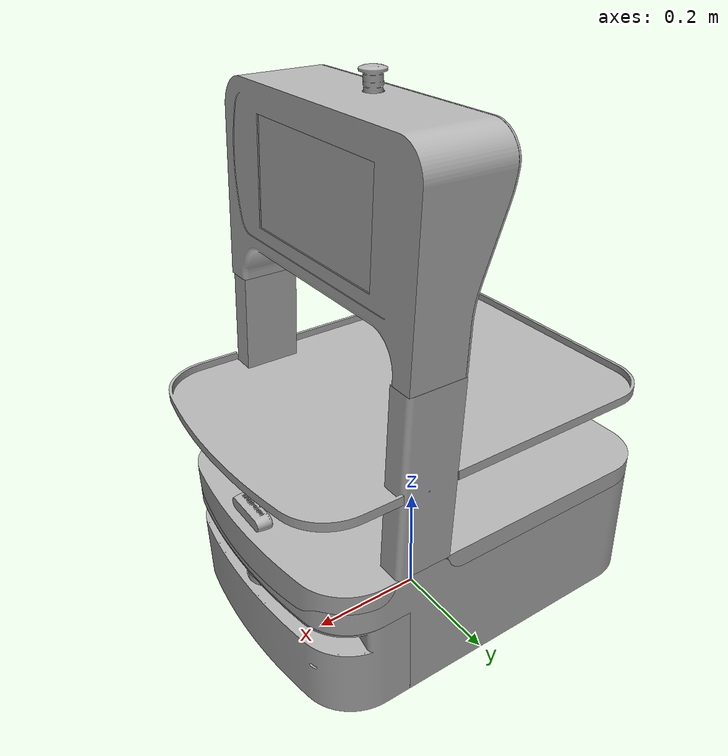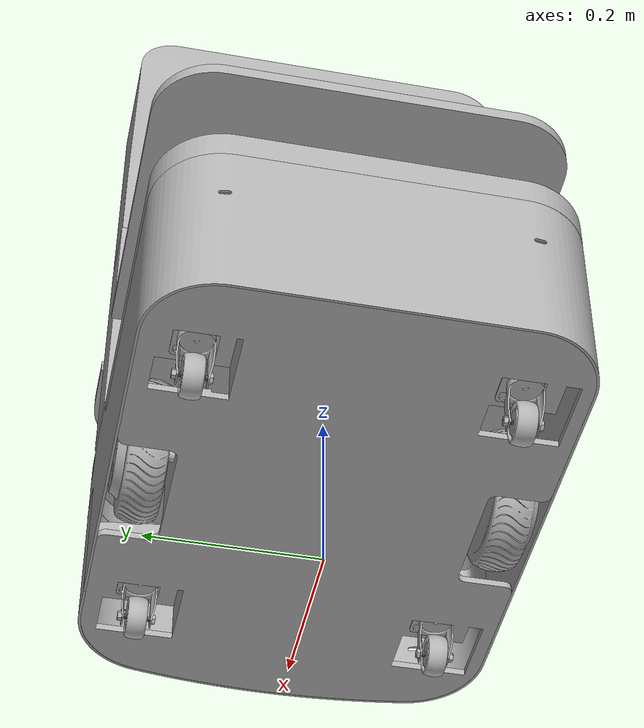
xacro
<?xml version="1.0" ?>
<robot name="medical_delivery" xmlns:xacro="http://www.ros.org/wiki/xacro">

<xacro:include filename="$(find medical_delivery_robot)/urdf/materials.xacro" />
<xacro:include filename="$(find medical_delivery_robot)/urdf/medical_delivery.trans" />
<xacro:include filename="$(find medical_delivery_robot)/urdf/medical_delivery.gazebo" />

<!-- Base footprint for navigation and SLAM -->
<link name="base_footprint">
  <visual>
    <origin xyz="0 0 0" rpy="0 0 0"/>
    <geometry>
      <box size="0.001 0.001 0.001"/>
    </geometry>
  </visual>
</link>

<joint name="base_footprint_joint" type="fixed">
  <origin xyz="0 0 0.059881" rpy="0 0 0"/>
  <parent link="base_footprint"/>
  <child link="base_link"/>
</joint>

<link name="base_link">
  <inertial>
    <origin xyz="-0.0015580269574476447 0.00017761493072022462 0.026328517143392884" rpy="0 0 0"/>
    <mass value="25.50007121490859"/>
    <inertia ixx="0.717739" iyy="0.500811" izz="1.175143" ixy="-0.003329" iyz="-0.001513" ixz="-0.000303"/>
  </inertial>
  <visual>
    <origin xyz="0 0 0" rpy="0 0 -1.5708"/>
    <geometry>
      <mesh filename="file://$(find medical_delivery_robot)/meshes/base_link.stl" scale="0.001 0.001 0.001"/>
    </geometry>
    <material name="silver"/>
  </visual>
  <collision>
    <origin xyz="0 0 0" rpy="0 0 -1.5708"/>
    <geometry>
      <mesh filename="file://$(find medical_delivery_robot)/meshes/base_link.stl" scale="0.001 0.001 0.001"/>
    </geometry>
  </collision>
</link>

<link name="left_wheel_1">
  <inertial>
    <origin xyz="-0.03611520840332852 -7.184577711271973e-06 3.922141720499872e-07" rpy="0 0 0"/>
    <mass value="7.769180436532471"/>
    <inertia ixx="0.022657" iyy="0.013179" izz="0.013179" ixy="3e-06" iyz="0.0" ixz="-0.0"/>
  </inertial>
  <visual>
    <origin xyz="0.17 0.003494 -0.059881" rpy="0 0 0"/>
    <geometry>
      <mesh filename="file://$(find medical_delivery_robot)/meshes/left_wheel_1.stl" scale="0.001 0.001 0.001"/>
    </geometry>
    <material name="silver"/>
  </visual>
  <collision>
    <origin xyz="0.17 0.003494 -0.059881" rpy="0 0 0"/>
    <geometry>
      <mesh filename="file://$(find medical_delivery_robot)/meshes/left_wheel_1.stl" scale="0.001 0.001 0.001"/>
    </geometry>
  </collision>
</link>

<link name="right_wheel_1">
  <inertial>
    <origin xyz="0.03611520840332594 7.471004138964992e-06 3.9221417211243725e-07" rpy="0 0 0"/>
    <mass value="7.769180436532471"/>
    <inertia ixx="0.022657" iyy="0.013179" izz="0.013179" ixy="3e-06" iyz="-0.0" ixz="0.0"/>
  </inertial>
  <visual>
    <origin xyz="-0.168 0.003494 -0.059881" rpy="0 0 0"/>
    <geometry>
      <mesh filename="file://$(find medical_delivery_robot)/meshes/right_wheel_1.stl" scale="0.001 0.001 0.001"/>
    </geometry>
    <material name="silver"/>
  </visual>
  <collision>
    <origin xyz="-0.168 0.003494 -0.059881" rpy="0 0 0"/>
    <geometry>
      <mesh filename="file://$(find medical_delivery_robot)/meshes/right_wheel_1.stl" scale="0.001 0.001 0.001"/>
    </geometry>
  </collision>
</link>

<link name="imu_link">
  <visual>
    <geometry>
      <box size="0.02 0.02 0.01"/>
    </geometry>
  </visual>
  <collision>
    <geometry>
      <box size="0.02 0.02 0.01"/>
    </geometry>
  </collision>
  <inertial>
    <mass value="0.01"/>
    <inertia ixx="1e-5" ixy="0" ixz="0" iyy="1e-5" iyz="0" izz="1e-5"/>
  </inertial>
</link>

<link name="caster_wheel_1">
  <inertial>
    <origin xyz="4.3398353255508226e-07 -0.01815035706201401 2.5772542134715887e-08" rpy="0 0 0"/>
    <mass value="0.292649138234217"/>
    <inertia ixx="5.4e-05" iyy="8.7e-05" izz="5.4e-05" ixy="0.0" iyz="0.0" ixz="0.0"/>
  </inertial>
  <visual>
    <origin xyz="-0.196231 0.18839 -0.002881" rpy="0 0 0"/>
    <geometry>
      <mesh filename="file://$(find medical_delivery_robot)/meshes/caster_wheel_1.stl" scale="0.001 0.001 0.001"/>
    </geometry>
    <material name="silver"/>
  </visual>
  <collision>
    <origin xyz="-0.196231 0.18839 -0.002881" rpy="0 0 0"/>
    <geometry>
      <mesh filename="file://$(find medical_delivery_robot)/meshes/caster_wheel_1.stl" scale="0.001 0.001 0.001"/>
    </geometry>
  </collision>
</link>

<link name="caster_wheel_plate_1">
  <inertial>
    <origin xyz="4.33983517594827e-07 -3.5706201845231433e-07 -0.0028716666253483514" rpy="0 0 0"/>
    <mass value="0.0765971141127986"/>
    <inertia ixx="1.3e-05" iyy="2.2e-05" izz="3.3e-05" ixy="-0.0" iyz="-0.0" ixz="-0.0"/>
  </inertial>
  <visual>
    <origin xyz="-0.179231 0.20589 -0.050881" rpy="0 0 0"/>
    <geometry>
      <mesh filename="file://$(find medical_delivery_robot)/meshes/caster_wheel_plate_1.stl" scale="0.001 0.001 0.001"/>
    </geometry>
    <material name="silver"/>
  </visual>
  <collision>
    <origin xyz="-0.179231 0.20589 -0.050881" rpy="0 0 0"/>
    <geometry>
      <mesh filename="file://$(find medical_delivery_robot)/meshes/caster_wheel_plate_1.stl" scale="0.001 0.001 0.001"/>
    </geometry>
  </collision>
</link>

<link name="wheel_hex_1">
  <inertial>
    <origin xyz="9.092601354343532e-07 -0.013859157220792617 6.919249372914008e-07" rpy="0 0 0"/>
    <mass value="0.009833539756275263"/>
    <inertia ixx="2e-06" iyy="0.0" izz="2e-06" ixy="0.0" iyz="0.0" ixz="-0.0"/>
  </inertial>
  <visual>
    <origin xyz="-0.196231 0.18839 -0.002881" rpy="0 0 0"/>
    <geometry>
      <mesh filename="file://$(find medical_delivery_robot)/meshes/wheel_hex_1.stl" scale="0.001 0.001 0.001"/>
    </geometry>
    <material name="silver"/>
  </visual>
  <collision>
    <origin xyz="-0.196231 0.18839 -0.002881" rpy="0 0 0"/>
    <geometry>
      <mesh filename="file://$(find medical_delivery_robot)/meshes/wheel_hex_1.stl" scale="0.001 0.001 0.001"/>
    </geometry>
  </collision>
</link>

<link name="caster_nut_1">
  <inertial>
    <origin xyz="1.23035697852103e-06 -0.0025003441644905477 -4.5058664033433005e-08" rpy="0 0 0"/>
    <mass value="0.002506733632811663"/>
    <inertia ixx="0.0" iyy="0.0" izz="0.0" ixy="0.0" iyz="-0.0" ixz="0.0"/>
  </inertial>
  <visual>
    <origin xyz="-0.196231 0.22339 -0.002881" rpy="0 0 0"/>
    <geometry>
      <mesh filename="file://$(find medical_delivery_robot)/meshes/caster_nut_1.stl" scale="0.001 0.001 0.001"/>
    </geometry>
    <material name="silver"/>
  </visual>
  <collision>
    <origin xyz="-0.196231 0.22339 -0.002881" rpy="0 0 0"/>
    <geometry>
      <mesh filename="file://$(find medical_delivery_robot)/meshes/caster_nut_1.stl" scale="0.001 0.001 0.001"/>
    </geometry>
  </collision>
</link>

<link name="caster_wheel_2_1">
  <inertial>
    <origin xyz="1.1394938911890584e-07 0.01815044333107088 3.644339067070991e-07" rpy="0 0 0"/>
    <mass value="0.292649138234217"/>
    <inertia ixx="5.4e-05" iyy="8.7e-05" izz="5.4e-05" ixy="0.0" iyz="0.0" ixz="-0.0"/>
  </inertial>
  <visual>
    <origin xyz="-0.198711 -0.181628 -0.002881" rpy="0 0 0"/>
    <geometry>
      <mesh filename="file://$(find medical_delivery_robot)/meshes/caster_wheel_2_1.stl" scale="0.001 0.001 0.001"/>
    </geometry>
    <material name="silver"/>
  </visual>
  <collision>
    <origin xyz="-0.198711 -0.181628 -0.002881" rpy="0 0 0"/>
    <geometry>
      <mesh filename="file://$(find medical_delivery_robot)/meshes/caster_wheel_2_1.stl" scale="0.001 0.001 0.001"/>
    </geometry>
  </collision>
</link>

<link name="wheel_hex_2_1">
  <inertial>
    <origin xyz="5.892259919981768e-07 0.013859243489849404 -3.017184884847139e-07" rpy="0 0 0"/>
    <mass value="0.009833539756275263"/>
    <inertia ixx="2e-06" iyy="0.0" izz="2e-06" ixy="-0.0" iyz="0.0" ixz="0.0"/>
  </inertial>
  <visual>
    <origin xyz="-0.198711 -0.181628 -0.002881" rpy="0 0 0"/>
    <geometry>
      <mesh filename="file://$(find medical_delivery_robot)/meshes/wheel_hex_2_1.stl" scale="0.001 0.001 0.001"/>
    </geometry>
    <material name="silver"/>
  </visual>
  <collision>
    <origin xyz="-0.198711 -0.181628 -0.002881" rpy="0 0 0"/>
    <geometry>
      <mesh filename="file://$(find medical_delivery_robot)/meshes/wheel_hex_2_1.stl" scale="0.001 0.001 0.001"/>
    </geometry>
  </collision>
</link>

<link name="caster_nut_2_1">
  <inertial>
    <origin xyz="9.10322835057098e-07 0.0025004304335473904 4.3526511273343435e-07" rpy="0 0 0"/>
    <mass value="0.002506733632811663"/>
    <inertia ixx="0.0" iyy="0.0" izz="0.0" ixy="-0.0" iyz="-0.0" ixz="-0.0"/>
  </inertial>
  <visual>
    <origin xyz="-0.198711 -0.216628 -0.002881" rpy="0 0 0"/>
    <geometry>
      <mesh filename="file://$(find medical_delivery_robot)/meshes/caster_nut_2_1.stl" scale="0.001 0.001 0.001"/>
    </geometry>
    <material name="silver"/>
  </visual>
  <collision>
    <origin xyz="-0.198711 -0.216628 -0.002881" rpy="0 0 0"/>
    <geometry>
      <mesh filename="file://$(find medical_delivery_robot)/meshes/caster_nut_2_1.stl" scale="0.001 0.001 0.001"/>
    </geometry>
  </collision>
</link>

<link name="caster_wheel_plate_2_1">
  <inertial>
    <origin xyz="1.1394937415865058e-07 4.433310668572332e-07 -0.0028713279639839967" rpy="0 0 0"/>
    <mass value="0.0765971141127986"/>
    <inertia ixx="1.3e-05" iyy="2.2e-05" izz="3.3e-05" ixy="0.0" iyz="-0.0" ixz="-0.0"/>
  </inertial>
  <visual>
    <origin xyz="-0.181711 -0.199128 -0.050881" rpy="0 0 0"/>
    <geometry>
      <mesh filename="file://$(find medical_delivery_robot)/meshes/caster_wheel_plate_2_1.stl" scale="0.001 0.001 0.001"/>
    </geometry>
    <material name="silver"/>
  </visual>
  <collision>
    <origin xyz="-0.181711 -0.199128 -0.050881" rpy="0 0 0"/>
    <geometry>
      <mesh filename="file://$(find medical_delivery_robot)/meshes/caster_wheel_plate_2_1.stl" scale="0.001 0.001 0.001"/>
    </geometry>
  </collision>
</link>

<link name="wheel_hex_3_1">
  <inertial>
    <origin xyz="5.892259937745337e-07 0.013859243489849432 -3.017184885558376e-07" rpy="0 0 0"/>
    <mass value="0.009833539756275263"/>
    <inertia ixx="2e-06" iyy="0.0" izz="2e-06" ixy="-0.0" iyz="0.0" ixz="0.0"/>
  </inertial>
  <visual>
    <origin xyz="0.156289 -0.181628 -0.002881" rpy="0 0 0"/>
    <geometry>
      <mesh filename="file://$(find medical_delivery_robot)/meshes/wheel_hex_3_1.stl" scale="0.001 0.001 0.001"/>
    </geometry>
    <material name="silver"/>
  </visual>
  <collision>
    <origin xyz="0.156289 -0.181628 -0.002881" rpy="0 0 0"/>
    <geometry>
      <mesh filename="file://$(find medical_delivery_robot)/meshes/wheel_hex_3_1.stl" scale="0.001 0.001 0.001"/>
    </geometry>
  </collision>
</link>

<link name="caster_nut_3_1">
  <inertial>
    <origin xyz="9.10322836888966e-07 0.0025004562285943777 2.9360270378678624e-07" rpy="0 0 0"/>
    <mass value="0.002506733632811663"/>
    <inertia ixx="0.0" iyy="0.0" izz="0.0" ixy="0.0" iyz="-0.0" ixz="0.0"/>
  </inertial>
  <visual>
    <origin xyz="0.156289 -0.216628 -0.002881" rpy="0 0 0"/>
    <geometry>
      <mesh filename="file://$(find medical_delivery_robot)/meshes/caster_nut_3_1.stl" scale="0.001 0.001 0.001"/>
    </geometry>
    <material name="silver"/>
  </visual>
  <collision>
    <origin xyz="0.156289 -0.216628 -0.002881" rpy="0 0 0"/>
    <geometry>
      <mesh filename="file://$(find medical_delivery_robot)/meshes/caster_nut_3_1.stl" scale="0.001 0.001 0.001"/>
    </geometry>
  </collision>
</link>

<link name="caster_wheel_3_1">
  <inertial>
    <origin xyz="1.1394939092301826e-07 0.018150443331070854 3.6443390656528546e-07" rpy="0 0 0"/>
    <mass value="0.292649138234217"/>
    <inertia ixx="5.4e-05" iyy="8.7e-05" izz="5.4e-05" ixy="0.0" iyz="0.0" ixz="-0.0"/>
  </inertial>
  <visual>
    <origin xyz="0.156289 -0.181628 -0.002881" rpy="0 0 0"/>
    <geometry>
      <mesh filename="file://$(find medical_delivery_robot)/meshes/caster_wheel_3_1.stl" scale="0.001 0.001 0.001"/>
    </geometry>
    <material name="silver"/>
  </visual>
  <collision>
    <origin xyz="0.156289 -0.181628 -0.002881" rpy="0 0 0"/>
    <geometry>
      <mesh filename="file://$(find medical_delivery_robot)/meshes/caster_wheel_3_1.stl" scale="0.001 0.001 0.001"/>
    </geometry>
  </collision>
</link>

<link name="caster_wheel_plate_3_1">
  <inertial>
    <origin xyz="1.1394937571296282e-07 4.433310668572332e-07 -0.00287132796398408" rpy="0 0 0"/>
    <mass value="0.0765971141127986"/>
    <inertia ixx="1.3e-05" iyy="2.2e-05" izz="3.3e-05" ixy="-0.0" iyz="-0.0" ixz="-0.0"/>
  </inertial>
  <visual>
    <origin xyz="0.173289 -0.199128 -0.050881" rpy="0 0 0"/>
    <geometry>
      <mesh filename="file://$(find medical_delivery_robot)/meshes/caster_wheel_plate_3_1.stl" scale="0.001 0.001 0.001"/>
    </geometry>
    <material name="silver"/>
  </visual>
  <collision>
    <origin xyz="0.173289 -0.199128 -0.050881" rpy="0 0 0"/>
    <geometry>
      <mesh filename="file://$(find medical_delivery_robot)/meshes/caster_wheel_plate_3_1.stl" scale="0.001 0.001 0.001"/>
    </geometry>
  </collision>
</link>

<link name="caster_wheel_4_1">
  <inertial>
    <origin xyz="4.3398351790013834e-07 0.01814964293798385 3.644338687461453e-07" rpy="0 0 0"/>
    <mass value="0.292649138234217"/>
    <inertia ixx="5.4e-05" iyy="8.7e-05" izz="5.4e-05" ixy="0.0" iyz="0.0" ixz="-0.0"/>
  </inertial>
  <visual>
    <origin xyz="0.163769 0.22339 -0.002881" rpy="0 0 0"/>
    <geometry>
      <mesh filename="file://$(find medical_delivery_robot)/meshes/caster_wheel_4_1.stl" scale="0.001 0.001 0.001"/>
    </geometry>
    <material name="silver"/>
  </visual>
  <collision>
    <origin xyz="0.163769 0.22339 -0.002881" rpy="0 0 0"/>
    <geometry>
      <mesh filename="file://$(find medical_delivery_robot)/meshes/caster_wheel_4_1.stl" scale="0.001 0.001 0.001"/>
    </geometry>
  </collision>
</link>

<link name="wheel_hex_4_1">
  <inertial>
    <origin xyz="9.092601207794093e-07 0.01385844309676243 -3.01718526392325e-07" rpy="0 0 0"/>
    <mass value="0.009833539756275263"/>
    <inertia ixx="2e-06" iyy="0.0" izz="2e-06" ixy="-0.0" iyz="0.0" ixz="0.0"/>
  </inertial>
  <visual>
    <origin xyz="0.163769 0.22339 -0.002881" rpy="0 0 0"/>
    <geometry>
      <mesh filename="file://$(find medical_delivery_robot)/meshes/wheel_hex_4_1.stl" scale="0.001 0.001 0.001"/>
    </geometry>
    <material name="silver"/>
  </visual>
  <collision>
    <origin xyz="0.163769 0.22339 -0.002881" rpy="0 0 0"/>
    <geometry>
      <mesh filename="file://$(find medical_delivery_robot)/meshes/wheel_hex_4_1.stl" scale="0.001 0.001 0.001"/>
    </geometry>
  </collision>
</link>

<link name="caster_nut_4_1">
  <inertial>
    <origin xyz="1.2303569638383305e-06 0.00249963004046036 4.352650747906951e-07" rpy="0 0 0"/>
    <mass value="0.002506733632811663"/>
    <inertia ixx="0.0" iyy="0.0" izz="0.0" ixy="-0.0" iyz="-0.0" ixz="-0.0"/>
  </inertial>
  <visual>
    <origin xyz="0.163769 0.18839 -0.002881" rpy="0 0 0"/>
    <geometry>
      <mesh filename="file://$(find medical_delivery_robot)/meshes/caster_nut_4_1.stl" scale="0.001 0.001 0.001"/>
    </geometry>
    <material name="silver"/>
  </visual>
  <collision>
    <origin xyz="0.163769 0.18839 -0.002881" rpy="0 0 0"/>
    <geometry>
      <mesh filename="file://$(find medical_delivery_robot)/meshes/caster_nut_4_1.stl" scale="0.001 0.001 0.001"/>
    </geometry>
  </collision>
</link>

<link name="caster_wheel_plate_4_1">
  <inertial>
    <origin xyz="4.339835026068162e-07 -3.5706202050622693e-07 -0.0028713279640219316" rpy="0 0 0"/>
    <mass value="0.0765971141127986"/>
    <inertia ixx="1.3e-05" iyy="2.2e-05" izz="3.3e-05" ixy="0.0" iyz="-0.0" ixz="-0.0"/>
  </inertial>
  <visual>
    <origin xyz="0.180769 0.20589 -0.050881" rpy="0 0 0"/>
    <geometry>
      <mesh filename="file://$(find medical_delivery_robot)/meshes/caster_wheel_plate_4_1.stl" scale="0.001 0.001 0.001"/>
    </geometry>
    <material name="silver"/>
  </visual>
  <collision>
    <origin xyz="0.180769 0.20589 -0.050881" rpy="0 0 0"/>
    <geometry>
      <mesh filename="file://$(find medical_delivery_robot)/meshes/caster_wheel_plate_4_1.stl" scale="0.001 0.001 0.001"/>
    </geometry>
  </collision>
</link>

<link name="middle_cover_body_1">
  <inertial>
    <origin xyz="-0.2400043069666021 0.06924352924285132 0.10467557409198602" rpy="0 0 0"/>
    <mass value="7.3768999319018675"/>
    <inertia ixx="0.299898" iyy="0.35887" izz="0.603096" ixy="-1e-06" iyz="-0.017787" ixz="-2e-06"/>
  </inertial>
  <visual>
    <origin xyz="-0.239041 0.18101 -0.00666" rpy="0 0 0"/>
    <geometry>
      <mesh filename="file://$(find medical_delivery_robot)/meshes/middle_cover_body_1.stl" scale="0.001 0.001 0.001"/>
    </geometry>
    <material name="silver"/>
  </visual>
  <collision>
    <origin xyz="-0.239041 0.18101 -0.00666" rpy="0 0 0"/>
    <geometry>
      <mesh filename="file://$(find medical_delivery_robot)/meshes/middle_cover_body_1.stl" scale="0.001 0.001 0.001"/>
    </geometry>
  </collision>
</link>

<link name="front_cover_body_1">
  <inertial>
    <origin xyz="0.037898571407738495 -0.0516884782609337 -0.05842808104527521" rpy="0 0 0"/>
    <mass value="4.221228622641778"/>
    <inertia ixx="0.016775" iyy="0.11022" izz="0.106769" ixy="6e-06" iyz="0.002223" ixz="5.5e-05"/>
  </inertial>
  <visual>
    <origin xyz="0.039074 -0.330207 -0.165833" rpy="0 0 0"/>
    <geometry>
      <mesh filename="file://$(find medical_delivery_robot)/meshes/front_cover_body_1.stl" scale="0.001 0.001 0.001"/>
    </geometry>
    <material name="silver"/>
  </visual>
  <collision>
    <origin xyz="0.039074 -0.330207 -0.165833" rpy="0 0 0"/>
    <geometry>
      <mesh filename="file://$(find medical_delivery_robot)/meshes/front_cover_body_1.stl" scale="0.001 0.001 0.001"/>
    </geometry>
  </collision>
</link>

<link name="top_cover_body_1">
  <inertial>
    <origin xyz="-0.2412215391960858 0.13505980289459663 0.024284986861124014" rpy="0 0 0"/>
    <mass value="11.366541801316847"/>
    <inertia ixx="0.542507" iyy="0.196974" izz="0.736362" ixy="-6e-06" iyz="0.011975" ixz="-1e-06"/>
  </inertial>
  <visual>
    <origin xyz="-0.240313 0.060531 -0.205833" rpy="0 0 0"/>
    <geometry>
      <mesh filename="file://$(find medical_delivery_robot)/meshes/top_cover_body_1.stl" scale="0.001 0.001 0.001"/>
    </geometry>
    <material name="silver"/>
  </visual>
  <collision>
    <origin xyz="-0.240313 0.060531 -0.205833" rpy="0 0 0"/>
    <geometry>
      <mesh filename="file://$(find medical_delivery_robot)/meshes/top_cover_body_1.stl" scale="0.001 0.001 0.001"/>
    </geometry>
  </collision>
</link>

<link name="lidar_camera_1">
  <inertial>
    <origin xyz="1.4596318044490125e-05 -0.0005648293751858713 0.009299047471123395" rpy="0 0 0"/>
    <mass value="1.298267249619563"/>
    <inertia ixx="0.00059" iyy="0.000619" izz="0.000863" ixy="-0.0" iyz="1.7e-05" ixz="-0.0"/>
  </inertial>
  <visual>
    <origin xyz="0.000945 -0.282585 -0.122833" rpy="0 0 0"/>
    <geometry>
      <mesh filename="file://$(find medical_delivery_robot)/meshes/lidar_camera_1.stl" scale="0.001 0.001 0.001"/>
    </geometry>
    <material name="silver"/>
  </visual>
  <collision>
    <origin xyz="0.000945 -0.282585 -0.122833" rpy="0 0 0"/>
    <geometry>
      <mesh filename="file://$(find medical_delivery_robot)/meshes/lidar_camera_1.stl" scale="0.001 0.001 0.001"/>
    </geometry>
  </collision>
</link>

<link name="camera_depth_optical_frame"/>

<link name="camera_base_1">
  <inertial>
    <origin xyz="6.203018544851879e-05 0.001895520517469551 0.012478001926063825" rpy="0 0 0"/>
    <mass value="0.35150824429539956"/>
    <inertia ixx="3.2e-05" iyy="0.000227" izz="0.000229" ixy="2e-06" iyz="0.0" ixz="-0.0"/>
  </inertial>
  <visual>
    <origin xyz="-0.30199 0 -0.238833" rpy="0 0 -1.570796"/>
    <geometry>
      <mesh filename="file://$(find medical_delivery_robot)/meshes/camera_base_1.stl" scale="0.001 0.001 0.001"/>
    </geometry>
    <material name="silver"/>
  </visual>
  <collision>
    <origin xyz="0.0 -0.30199 -0.238833" rpy="0 0 0"/>
    <geometry>
      <mesh filename="file://$(find medical_delivery_robot)/meshes/camera_base_1.stl" scale="0.001 0.001 0.001"/>
    </geometry>
  </collision>
</link>

<link name="standoff_serve_plate_right_1">
  <inertial>
    <origin xyz="-0.0027303174460470703 -0.0553401460409946 0.14751291718334367" rpy="0 0 0"/>
    <mass value="1.787847408322521"/>
    <inertia ixx="0.014954" iyy="0.013531" izz="0.002558" ixy="1.9e-05" iyz="0.000863" ixz="0.0"/>
  </inertial>
  <visual>
    <origin xyz="-0.223 -0.20399 -0.238833" rpy="0 0 0"/>
    <geometry>
      <mesh filename="file://$(find medical_delivery_robot)/meshes/standoff_serve_plate_right_1.stl" scale="0.001 0.001 0.001"/>
    </geometry>
    <material name="silver"/>
  </visual>
  <collision>
    <origin xyz="-0.223 -0.20399 -0.238833" rpy="0 0 0"/>
    <geometry>
      <mesh filename="file://$(find medical_delivery_robot)/meshes/standoff_serve_plate_right_1.stl" scale="0.001 0.001 0.001"/>
    </geometry>
  </collision>
</link>

<link name="standof_serve_plate_left_1">
  <inertial>
    <origin xyz="-0.0011645246162744205 -0.055263559760329095 0.1474894863624057" rpy="0 0 0"/>
    <mass value="1.7878166717045392"/>
    <inertia ixx="0.014954" iyy="0.013531" izz="0.002558" ixy="-1.9e-05" iyz="0.000864" ixz="0.0"/>
  </inertial>
  <visual>
    <origin xyz="0.2225 -0.20449 -0.238833" rpy="0 0 0"/>
    <geometry>
      <mesh filename="file://$(find medical_delivery_robot)/meshes/standof_serve_plate_left_1.stl" scale="0.001 0.001 0.001"/>
    </geometry>
    <material name="silver"/>
  </visual>
  <collision>
    <origin xyz="0.2225 -0.20449 -0.238833" rpy="0 0 0"/>
    <geometry>
      <mesh filename="file://$(find medical_delivery_robot)/meshes/standof_serve_plate_left_1.stl" scale="0.001 0.001 0.001"/>
    </geometry>
  </collision>
</link>

<link name="plate_serve_1">
  <inertial>
    <origin xyz="0.2429969184850486 -0.13119207070035335 0.0008431965282322818" rpy="0 0 0"/>
    <mass value="8.105047584274514"/>
    <inertia ixx="0.311687" iyy="0.168105" izz="0.479668" ixy="3e-06" iyz="6.7e-05" ixz="-0.0"/>
  </inertial>
  <visual>
    <origin xyz="0.245395 -0.15249 -0.37566" rpy="0 0 0"/>
    <geometry>
      <mesh filename="file://$(find medical_delivery_robot)/meshes/plate_serve_1.stl" scale="0.001 0.001 0.001"/>
    </geometry>
    <material name="silver"/>
  </visual>
  <collision>
    <origin xyz="0.245395 -0.15249 -0.37566" rpy="0 0 0"/>
    <geometry>
      <mesh filename="file://$(find medical_delivery_robot)/meshes/plate_serve_1.stl" scale="0.001 0.001 0.001"/>
    </geometry>
  </collision>
</link>

<link name="cover_lcd_front_1">
  <inertial>
    <origin xyz="0.21969464191633406 -0.055652524485476584 0.18169196176201075" rpy="0 0 0"/>
    <mass value="5.350260544261879"/>
    <inertia ixx="0.074158" iyy="0.238603" izz="0.183621" ixy="1e-06" iyz="0.010856" ixz="0.0"/>
  </inertial>
  <visual>
    <origin xyz="0.221395 -0.185201 -0.533833" rpy="0 0 0"/>
    <geometry>
      <mesh filename="file://$(find medical_delivery_robot)/meshes/cover_lcd_front_1.stl" scale="0.001 0.001 0.001"/>
    </geometry>
    <material name="silver"/>
  </visual>
  <collision>
    <origin xyz="0.221395 -0.185201 -0.533833" rpy="0 0 0"/>
    <geometry>
      <mesh filename="file://$(find medical_delivery_robot)/meshes/cover_lcd_front_1.stl" scale="0.001 0.001 0.001"/>
    </geometry>
  </collision>
</link>

<link name="cover_lcd_back_1">
  <inertial>
    <origin xyz="0.22147292042198327 -0.03762475828181449 0.17640873128949286" rpy="0 0 0"/>
    <mass value="3.1100505022030394"/>
    <inertia ixx="0.019842" iyy="0.082393" izz="0.066158" ixy="-0.0" iyz="0.005601" ixz="1e-06"/>
  </inertial>
  <visual>
    <origin xyz="0.223149 -0.094767 -0.533833" rpy="0 0 0"/>
    <geometry>
      <mesh filename="file://$(find medical_delivery_robot)/meshes/cover_lcd_back_1.stl" scale="0.001 0.001 0.001"/>
    </geometry>
    <material name="silver"/>
  </visual>
  <collision>
    <origin xyz="0.223149 -0.094767 -0.533833" rpy="0 0 0"/>
    <geometry>
      <mesh filename="file://$(find medical_delivery_robot)/meshes/cover_lcd_back_1.stl" scale="0.001 0.001 0.001"/>
    </geometry>
  </collision>
</link>

<link name="lcd_display_1">
  <inertial>
    <origin xyz="0.17335500372725518 -0.0126849045215848 0.003842094614228797" rpy="0 0 0"/>
    <mass value="11.579841030532071"/>
    <inertia ixx="0.04053" iyy="0.134577" izz="0.095481" ixy="2.3e-05" iyz="0.002618" ixz="2e-06"/>
  </inertial>
  <visual>
    <origin xyz="0.170802 -0.171601 -0.713967" rpy="0 0 0"/>
    <geometry>
      <mesh filename="file://$(find medical_delivery_robot)/meshes/lcd_display_1.stl" scale="0.001 0.001 0.001"/>
    </geometry>
    <material name="silver"/>
  </visual>
  <collision>
    <origin xyz="0.170802 -0.171601 -0.713967" rpy="0 0 0"/>
    <geometry>
      <mesh filename="file://$(find medical_delivery_robot)/meshes/lcd_display_1.stl" scale="0.001 0.001 0.001"/>
    </geometry>
  </collision>
</link>

<link name="emergency_button_v1_1">
  <inertial>
    <origin xyz="4.884938638362053e-07 -1.0507648033619699e-07 -0.005638943026926024" rpy="0 0 0"/>
    <mass value="0.43791066957496694"/>
    <inertia ixx="0.00021" iyy="0.000218" izz="6.4e-05" ixy="-0.0" iyz="0.0" ixz="0.0"/>
  </inertial>
  <visual>
    <origin xyz="0.001698 -0.06795 -0.843833" rpy="0 0 0"/>
    <geometry>
      <mesh filename="file://$(find medical_delivery_robot)/meshes/emergency_button_v1_1.stl" scale="0.001 0.001 0.001"/>
    </geometry>
    <material name="silver"/>
  </visual>
  <collision>
    <origin xyz="0.001698 -0.06795 -0.843833" rpy="0 0 0"/>
    <geometry>
      <mesh filename="file://$(find medical_delivery_robot)/meshes/emergency_button_v1_1.stl" scale="0.001 0.001 0.001"/>
    </geometry>
  </collision>
</link>

<joint name="left_wheel_joint" type="continuous">
  <origin xyz="-0.003494 0.17 0.059881" rpy="0 0 -1.570796"/>
  <parent link="base_link"/>
  <child link="left_wheel_1"/>
  <axis xyz="1.0 -0.0 0.0"/>
</joint>

<joint name="right_wheel_joint" type="continuous">
  <origin xyz="-0.003494 -0.17 0.059881" rpy="0 0 -1.570796"/>
  <parent link="base_link"/>
  <child link="right_wheel_1"/>
  <axis xyz="1.0 -0.0 0.0"/>
</joint>

<joint name="imu_joint" type="fixed">
  <parent link="base_link"/>
  <child link="imu_link"/>
  <origin xyz="0 0 0.1" rpy="0 0 0"/>
</joint>

<joint name="Revolute 5" type="continuous">
  <origin xyz="0.0 0.0 0.0" rpy="0 0 0"/>
  <parent link="wheel_hex_1"/>
  <child link="caster_wheel_1"/>
  <axis xyz="-0.0 -1.0 -0.0"/>
</joint>

<joint name="Revolute 7" type="continuous">
  <origin xyz="0.2025 -0.17920 0.050881" rpy="0 0 0"/>
  <parent link="base_link"/>
  <child link="caster_wheel_plate_1"/>
  <axis xyz="0.0 0.0 -1.0"/>
</joint>

<joint name="Rigid 12" type="fixed">
  <origin xyz="0.017 0.0175 -0.048" rpy="0 0 0"/>
  <parent link="caster_wheel_plate_1"/>
  <child link="wheel_hex_1"/>
</joint>

<joint name="Rigid 13" type="fixed">
  <origin xyz="0.017 -0.0175 -0.048" rpy="0 0 0"/>
  <parent link="caster_wheel_plate_1"/>
  <child link="caster_nut_1"/>
</joint>

<joint name="Revolute 18" type="continuous">
  <origin xyz="0.0 0.0 0.0" rpy="0 0 0"/>
  <parent link="wheel_hex_2_1"/>
  <child link="caster_wheel_2_1"/>
  <axis xyz="0.0 1.0 0.0"/>
</joint>

<joint name="Rigid 19" type="fixed">
  <origin xyz="0.017 -0.0175 -0.048" rpy="0 0 0"/>
  <parent link="caster_wheel_plate_2_1"/>
  <child link="wheel_hex_2_1"/>
</joint>

<joint name="Rigid 20" type="fixed">
  <origin xyz="0.017 0.0175 -0.048" rpy="0 0 0"/>
  <parent link="caster_wheel_plate_2_1"/>
  <child link="caster_nut_2_1"/>
</joint>

<joint name="Revolute 21" type="continuous">
  <origin xyz="0.2025 0.1770 0.050881" rpy="0 0 0"/>
  <parent link="base_link"/>
  <child link="caster_wheel_plate_2_1"/>
  <axis xyz="0.0 0.0 -1.0"/>
</joint>

<joint name="Rigid 22" type="fixed">
  <origin xyz="0.017 -0.0175 -0.048" rpy="0 0 0"/>
  <parent link="caster_wheel_plate_3_1"/>
  <child link="wheel_hex_3_1"/>
</joint>

<joint name="Rigid 23" type="fixed">
  <origin xyz="0.017 0.0175 -0.048" rpy="0 0 0"/>
  <parent link="caster_wheel_plate_3_1"/>
  <child link="caster_nut_3_1"/>
</joint>

<joint name="Revolute 24" type="continuous">
  <origin xyz="0.0 0.0 0.0" rpy="0 0 0"/>
  <parent link="wheel_hex_3_1"/>
  <child link="caster_wheel_3_1"/>
  <axis xyz="0.0 1.0 0.0"/>
</joint>

<joint name="Revolute 25" type="continuous">
  <origin xyz="-0.205 0.17750 0.050881" rpy="0 0 0"/>
  <parent link="base_link"/>
  <child link="caster_wheel_plate_3_1"/>
  <axis xyz="-0.0 -0.0 1.0"/>
</joint>

<joint name="Revolute 26" type="continuous">
  <origin xyz="0.0 0.0 0.0" rpy="0 0 0"/>
  <parent link="wheel_hex_4_1"/>
  <child link="caster_wheel_4_1"/>
  <axis xyz="0.0 1.0 0.0"/>
</joint>

<joint name="Rigid 27" type="fixed">
  <origin xyz="0.017 -0.0175 -0.048" rpy="0 0 0"/>
  <parent link="caster_wheel_plate_4_1"/>
  <child link="wheel_hex_4_1"/>
</joint>

<joint name="Rigid 28" type="fixed">
  <origin xyz="0.017 0.0175 -0.048" rpy="0 0 0"/>
  <parent link="caster_wheel_plate_4_1"/>
  <child link="caster_nut_4_1"/>
</joint>

<joint name="Revolute 29" type="continuous">
  <origin xyz="-0.205 -0.17750 0.050881" rpy="0 0 0"/>
  <parent link="base_link"/>
  <child link="caster_wheel_plate_4_1"/>
  <axis xyz="0.0 0.0 -1.0"/>
</joint>

<joint name="Rigid 30" type="fixed">
  <origin xyz="-0.18101 -0.239041 0.00666" rpy="0 0 -1.570796"/>
  <parent link="base_link"/>
  <child link="middle_cover_body_1"/>
</joint>

<joint name="Rigid 33" type="fixed">
  <origin xyz="-0.278115 0.511217 0.159173" rpy="0 0 0"/>
  <parent link="middle_cover_body_1"/>
  <child link="front_cover_body_1"/>
</joint>

<joint name="Rigid 34" type="fixed">
  <origin xyz="0.001272 0.120479 0.199173" rpy="0 0 0"/>
  <parent link="middle_cover_body_1"/>
  <child link="top_cover_body_1"/>
</joint>

<joint name="Rigid 35" type="fixed">
  <origin xyz="0.038129 -0.047622 -0.043" rpy="0 0 1.570796"/>
  <parent link="front_cover_body_1"/>
  <child link="lidar_camera_1"/>
</joint>

<joint name="Rigid 36" type="fixed">
  <origin xyz="-0.240313 0.362521 0.033" rpy="0 0 1.570796"/>
  <parent link="top_cover_body_1"/>
  <child link="camera_base_1"/>
</joint>

<joint name="camera_depth_optical_joint" type="fixed">
  <parent link="camera_base_1"/>
  <child link="camera_depth_optical_frame"/>
  <origin xyz="0 0 0" rpy="-1.570796 0 -1.570796"/>
</joint>

<joint name="Rigid 37" type="fixed">
  <origin xyz="-0.017313 0.264521 0.033" rpy="0 0 0"/>
  <parent link="top_cover_body_1"/>
  <child link="standoff_serve_plate_right_1"/>
</joint>

<joint name="Rigid 38" type="fixed">
  <origin xyz="-0.462813 0.265021 0.033" rpy="0 0 0"/>
  <parent link="top_cover_body_1"/>
  <child link="standof_serve_plate_left_1"/>
</joint>

<joint name="Rigid 39" type="fixed">
  <origin xyz="-0.022895 -0.052 0.136827" rpy="0 0 0"/>
  <parent link="standof_serve_plate_left_1"/>
  <child link="plate_serve_1"/>
</joint>

<joint name="Rigid 40" type="fixed">
  <origin xyz="0.001105 -0.019289 0.295" rpy="0 0 0"/>
  <parent link="standof_serve_plate_left_1"/>
  <child link="cover_lcd_front_1"/>
</joint>

<joint name="Rigid 42" type="fixed">
  <origin xyz="-0.000649 -0.109723 0.295" rpy="0 0 0"/>
  <parent link="standof_serve_plate_left_1"/>
  <child link="cover_lcd_back_1"/>
</joint>

<joint name="Rigid 43" type="fixed">
  <origin xyz="0.050593 -0.0136 0.180134" rpy="0 0 0"/>
  <parent link="cover_lcd_front_1"/>
  <child link="lcd_display_1"/>
</joint>

<joint name="Rigid 44" type="fixed">
  <origin xyz="0.219697 -0.117251 0.31" rpy="0 0 0"/>
  <parent link="cover_lcd_front_1"/>
  <child link="emergency_button_v1_1"/>
</joint>

</robot>

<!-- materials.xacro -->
<robot name="medical_delivery" xmlns:xacro="http://www.ros.org/wiki/xacro" >

<material name="silver">
  <color rgba="0.700 0.700 0.700 1.000"/>
</material>

</robot>

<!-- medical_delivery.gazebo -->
<robot name="medical_delivery" xmlns:xacro="http://www.ros.org/wiki/xacro" >

<xacro:property name="body_color" value="Gazebo/Silver" />

<gazebo>
  <plugin name="control" filename="libgazebo_ros_control.so"/>
</gazebo>

<gazebo reference="base_link">
  <material>${body_color}</material>
  <mu1>0.2</mu1>
  <mu2>0.2</mu2>
  <self_collide>true</self_collide>
  <gravity>true</gravity>
</gazebo>

<gazebo reference="caster_wheel_1">
  <material>${body_color}</material>
  <mu1>0.2</mu1>
  <mu2>0.2</mu2>
  <self_collide>true</self_collide>
</gazebo>

<gazebo reference="caster_wheel_plate_1">
  <material>${body_color}</material>
  <mu1>0.2</mu1>
  <mu2>0.2</mu2>
  <kp>1000000.0</kp>
  <kd>100.0</kd>
  <self_collide>true</self_collide>
</gazebo>

<gazebo reference="wheel_hex_1">
  <material>${body_color}</material>
  <mu1>0.2</mu1>
  <mu2>0.2</mu2>
  <self_collide>true</self_collide>
</gazebo>

<gazebo reference="caster_nut_1">
  <material>${body_color}</material>
  <mu1>0.2</mu1>
  <mu2>0.2</mu2>
  <self_collide>true</self_collide>
</gazebo>

<gazebo reference="caster_wheel_2_1">
  <material>${body_color}</material>
  <mu1>0.2</mu1>
  <mu2>0.2</mu2>
  <self_collide>true</self_collide>
</gazebo>

<gazebo reference="wheel_hex_2_1">
  <material>${body_color}</material>
  <mu1>0.2</mu1>
  <mu2>0.2</mu2>
  <self_collide>true</self_collide>
</gazebo>

<gazebo reference="caster_nut_2_1">
  <material>${body_color}</material>
  <mu1>0.2</mu1>
  <mu2>0.2</mu2>
  <self_collide>true</self_collide>
</gazebo>

<gazebo reference="caster_wheel_plate_2_1">
  <material>${body_color}</material>
  <mu1>0.2</mu1>
  <mu2>0.2</mu2>
  <kp>1000000.0</kp>
  <kd>100.0</kd>
  <self_collide>true</self_collide>
</gazebo>

<gazebo reference="wheel_hex_3_1">
  <material>${body_color}</material>
  <mu1>0.2</mu1>
  <mu2>0.2</mu2>
  <self_collide>true</self_collide>
</gazebo>

<gazebo reference="caster_nut_3_1">
  <material>${body_color}</material>
  <mu1>0.2</mu1>
  <mu2>0.2</mu2>
  <self_collide>true</self_collide>
</gazebo>

<gazebo reference="caster_wheel_3_1">
  <material>${body_color}</material>
  <mu1>0.2</mu1>
  <mu2>0.2</mu2>
  <self_collide>true</self_collide>
</gazebo>

<gazebo reference="caster_wheel_plate_3_1">
  <material>${body_color}</material>
  <mu1>0.2</mu1>
  <mu2>0.2</mu2>
  <kp>1000000.0</kp>
  <kd>100.0</kd>
  <self_collide>true</self_collide>
</gazebo>

<gazebo reference="caster_wheel_4_1">
  <material>${body_color}</material>
  <mu1>0.2</mu1>
  <mu2>0.2</mu2>
  <self_collide>true</self_collide>
</gazebo>

<gazebo reference="wheel_hex_4_1">
  <material>${body_color}</material>
  <mu1>0.2</mu1>
  <mu2>0.2</mu2>
  <self_collide>true</self_collide>
</gazebo>

<gazebo reference="caster_nut_4_1">
  <material>${body_color}</material>
  <mu1>0.2</mu1>
  <mu2>0.2</mu2>
  <self_collide>true</self_collide>
</gazebo>

<gazebo reference="caster_wheel_plate_4_1">
  <material>${body_color}</material>
  <mu1>0.2</mu1>
  <mu2>0.2</mu2>
  <kp>1000000.0</kp>
  <kd>100.0</kd>
  <self_collide>true</self_collide>
</gazebo>

<gazebo reference="middle_cover_body_1">
  <material>${body_color}</material>
  <mu1>0.2</mu1>
  <mu2>0.2</mu2>
  <self_collide>true</self_collide>
</gazebo>

<gazebo reference="left_wheel_1">
  <material>${body_color}</material>
  <mu1>0.2</mu1>
  <mu2>0.2</mu2>
  <self_collide>true</self_collide>
</gazebo>

<gazebo reference="right_wheel_1">
  <material>${body_color}</material>
  <mu1>0.2</mu1>
  <mu2>0.2</mu2>
  <self_collide>true</self_collide>
</gazebo>

<gazebo reference="front_cover_body_1">
  <material>${body_color}</material>
  <mu1>0.2</mu1>
  <mu2>0.2</mu2>
  <self_collide>true</self_collide>
</gazebo>

<gazebo reference="top_cover_body_1">
  <material>${body_color}</material>
  <mu1>0.2</mu1>
  <mu2>0.2</mu2>
  <self_collide>true</self_collide>
</gazebo>

<gazebo reference="lidar_camera_1"> <sensor type="ray" name="laser_sensor">
    <plugin filename="libgazebo_ros_ray_sensor.so" name="laser_scanner">
      <ros>
        <remapping>~/out:=scan</remapping>
      </ros>
      <output_type>sensor_msgs/LaserScan</output_type>
      <frame_name>lidar_camera_1</frame_name>
    </plugin>
    <visualize>true</visualize>
    <update_rate>30</update_rate>
    <ray>
      <scan>
        <horizontal>
          <samples>180</samples>
          <resolution>1</resolution>
          <min_angle>-1.57</min_angle>
          <max_angle>1.57</max_angle>
        </horizontal>
      </scan>
      <range>
        <min>0.35</min>
        <max>12.0</max>
        <resolution>0.015</resolution>
      </range>
      <noise>
        <type>gaussian</type>
        <mean>0.0</mean>
        <stddev>0.01</stddev>
      </noise>
    </ray>
  </sensor>
</gazebo>

<gazebo reference="imu_link">
  <sensor name="mpu6050_imu" type="imu">
    <always_on>true</always_on>
    <update_rate>100</update_rate>
    <imu>
      <angular_velocity>
        <x><noise type="gaussian"><mean>0.0</mean><stddev>2e-4</stddev></noise></x>
        <y><noise type="gaussian"><mean>0.0</mean><stddev>2e-4</stddev></noise></y>
        <z><noise type="gaussian"><mean>0.0</mean><stddev>2e-4</stddev></noise></z>
      </angular_velocity>
      <linear_acceleration>
        <x><noise type="gaussian"><mean>0.0</mean><stddev>1.7e-2</stddev></noise></x>
        <y><noise type="gaussian"><mean>0.0</mean><stddev>1.7e-2</stddev></noise></y>
        <z><noise type="gaussian"><mean>0.0</mean><stddev>1.7e-2</stddev></noise></z>
      </linear_acceleration>
    </imu>
    <plugin name="imu_plugin" filename="libgazebo_ros_imu_sensor.so">
      <ros>
        <remapping>~/out:=imu/data</remapping>
      </ros>
      <initial_orientation_as_reference>false</initial_orientation_as_reference>
    </plugin>
  </sensor>
</gazebo>

<gazebo reference="camera_base_1"> <sensor type="depth" name="depth_camera">
    <always_on>true</always_on>
    <update_rate>15</update_rate>
    <visualize>true</visualize>
    <camera>
      <horizontal_fov>1.5708</horizontal_fov>
    </camera>
    <plugin filename="libgazebo_ros_camera.so" name="camera_controller">
      <ros>
        <namespace>/</namespace>
        <camera_name>camera</camera_name>
        <image_topic_name>image_raw</image_topic_name>
        <camera_info_topic_name>camera_info</camera_info_topic_name>
        <depth_image_topic_name>depth/image_raw</depth_image_topic_name>
        <depth_info_topic_name>depth/camera_info</depth_info_topic_name>
        <point_cloud_topic_name>depth/points</point_cloud_topic_name>
      </ros>
      <frame_name>camera_depth_optical_frame</frame_name>
      <baseline>0.1</baseline>
      <update_rate>15</update_rate>
      <min_depth>0.4</min_depth>
      <max_depth>8.0</max_depth>
    </plugin>
    <always_on>true</always_on>
    <visualize>true</visualize>
  </sensor>
</gazebo>

<gazebo reference="standoff_serve_plate_right_1">
  <material>${body_color}</material>
  <mu1>0.2</mu1>
  <mu2>0.2</mu2>
  <self_collide>true</self_collide>
</gazebo>

<gazebo reference="standof_serve_plate_left_1">
  <material>${body_color}</material>
  <mu1>0.2</mu1>
  <mu2>0.2</mu2>
  <self_collide>true</self_collide>
</gazebo>

<gazebo reference="plate_serve_1">
  <material>${body_color}</material>
  <mu1>0.2</mu1>
  <mu2>0.2</mu2>
  <self_collide>true</self_collide>
</gazebo>

<gazebo reference="cover_lcd_front_1">
  <material>${body_color}</material>
  <mu1>0.2</mu1>
  <mu2>0.2</mu2>
  <self_collide>true</self_collide>
</gazebo>

<gazebo reference="cover_lcd_back_1">
  <material>${body_color}</material>
  <mu1>0.2</mu1>
  <mu2>0.2</mu2>
  <self_collide>true</self_collide>
</gazebo>

<gazebo reference="lcd_display_1">
  <material>${body_color}</material>
  <mu1>0.2</mu1>
  <mu2>0.2</mu2>
  <self_collide>true</self_collide>
</gazebo>

<gazebo reference="emergency_button_v1_1">
  <material>${body_color}</material>
  <mu1>0.2</mu1>
  <mu2>0.2</mu2>
  <self_collide>true</self_collide>
</gazebo>

<gazebo>
  <plugin name="differential_drive_controller" filename="libgazebo_ros_diff_drive.so">
    <ros>
      <namespace>/</namespace>
    </ros>

    <left_joint>left_wheel_joint</left_joint>
    <right_joint>right_wheel_joint</right_joint>

    <wheel_separation>0.34</wheel_separation>
    <wheel_diameter>0.12</wheel_diameter>

    <max_wheel_torque>20</max_wheel_torque>
    <max_wheel_acceleration>1.0</max_wheel_acceleration>

    <publish_odom>true</publish_odom>
    <publish_odom_tf>true</publish_odom_tf>
    <publish_wheel_tf>true</publish_wheel_tf>

    <odometry_frame>odom</odometry_frame>
    <robot_base_frame>base_footprint</robot_base_frame>

    <odometry_topic>odom</odometry_topic>
    <command_topic>cmd_vel</command_topic>

    <update_rate>100</update_rate>
  </plugin>
</gazebo>

</robot>
